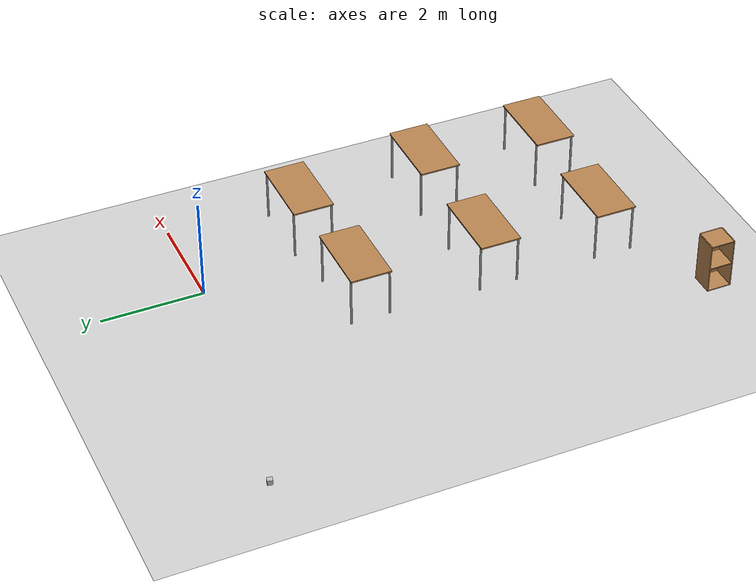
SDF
<sdf version="1.6">
 <world name="default">
  <light name="sun" type="directional">
   <pose>0 0 10 0 -0 0</pose>
   <diffuse>0.8 0.8 0.8 1</diffuse>
   <specular>0.2 0.2 0.2 1</specular>
   <attenuation>
    <range>1000</range>
    <constant>0.9</constant>
    <linear>0.01</linear>
    <quadratic>0.001</quadratic>
   </attenuation>
   <direction>-0.5 0.1 -0.9</direction>
  </light>
  <model name="ground_plane">
   <static>1</static>
   <link name="link">
    <collision name="collision">
     <geometry><plane><normal>0 0 1</normal><size>100 100</size></plane></geometry>
     <surface>
      <contact><collide_bitmask>65535</collide_bitmask></contact>
      <friction><ode><mu>100</mu><mu2>50</mu2></ode></friction>
     </surface>
    </collision>
    <visual name="visual">
     <cast_shadows>0</cast_shadows>
     <geometry><plane><normal>0 0 1</normal><size>100 100</size></plane></geometry>
     <material>
      <script><uri>file://media/materials/scripts/gazebo.material</uri><name>Gazebo/Grey</name></script>
     </material>
    </visual>
   </link>
  </model>
  <gravity>0 0 -9.8</gravity>
  <magnetic_field>6e-06 2.3e-05 -4.2e-05</magnetic_field>
  <atmosphere type="adiabatic"/>
  <physics name="default_physics" default="0" type="ode">
   <max_step_size>0.001</max_step_size>
   <real_time_factor>1</real_time_factor>
   <real_time_update_rate>1000</real_time_update_rate>
  </physics>
  <scene><ambient>0.4 0.4 0.4 1</ambient><background>0.7 0.7 0.7 1</background><shadows>1</shadows></scene>
  <spherical_coordinates>
   <surface_model>EARTH_WGS84</surface_model>
   <latitude_deg>0</latitude_deg>
   <longitude_deg>0</longitude_deg>
   <elevation>0</elevation>
   <heading_deg>0</heading_deg>
  </spherical_coordinates>
  <model name="table">
   <static>1</static>
   <link name="link">
    <collision name="surface">
     <pose>0 0 1 0 -0 0</pose>
     <geometry><box><size>1.5 0.8 0.03</size></box></geometry>
     <surface><friction><ode><mu>0.6</mu><mu2>0.6</mu2></ode></friction></surface>
    </collision>
    <visual name="visual1">
     <pose>0 0 1 0 -0 0</pose>
     <geometry><box><size>1.5 0.8 0.03</size></box></geometry>
     <material>
      <script><uri>file://media/materials/scripts/gazebo.material</uri><name>Gazebo/Wood</name></script>
     </material>
    </visual>
    <collision name="front_left_leg">
     <pose>0.68 0.38 0.5 0 -0 0</pose>
     <geometry><cylinder><radius>0.02</radius><length>1</length></cylinder></geometry>
    </collision>
    <visual name="front_left_leg">
     <pose>0.68 0.38 0.5 0 -0 0</pose>
     <geometry><cylinder><radius>0.02</radius><length>1</length></cylinder></geometry>
     <material>
      <script><uri>file://media/materials/scripts/gazebo.material</uri><name>Gazebo/Grey</name></script>
     </material>
    </visual>
    <collision name="front_right_leg">
     <pose>0.68 -0.38 0.5 0 -0 0</pose>
     <geometry><cylinder><radius>0.02</radius><length>1</length></cylinder></geometry>
    </collision>
    <visual name="front_right_leg">
     <pose>0.68 -0.38 0.5 0 -0 0</pose>
     <geometry><cylinder><radius>0.02</radius><length>1</length></cylinder></geometry>
     <material>
      <script><uri>file://media/materials/scripts/gazebo.material</uri><name>Gazebo/Grey</name></script>
     </material>
    </visual>
    <collision name="back_right_leg">
     <pose>-0.68 -0.38 0.5 0 -0 0</pose>
     <geometry><cylinder><radius>0.02</radius><length>1</length></cylinder></geometry>
    </collision>
    <visual name="back_right_leg">
     <pose>-0.68 -0.38 0.5 0 -0 0</pose>
     <geometry><cylinder><radius>0.02</radius><length>1</length></cylinder></geometry>
     <material>
      <script><uri>file://media/materials/scripts/gazebo.material</uri><name>Gazebo/Grey</name></script>
     </material>
    </visual>
    <collision name="back_left_leg">
     <pose>-0.68 0.38 0.5 0 -0 0</pose>
     <geometry><cylinder><radius>0.02</radius><length>1</length></cylinder></geometry>
    </collision>
    <visual name="back_left_leg">
     <pose>-0.68 0.38 0.5 0 -0 0</pose>
     <geometry><cylinder><radius>0.02</radius><length>1</length></cylinder></geometry>
     <material>
      <script><uri>file://media/materials/scripts/gazebo.material</uri><name>Gazebo/Grey</name></script>
     </material>
    </visual>
   </link>
   <pose>-1.23997 -2.51729 0 0 -0 0</pose>
  </model>
  <model name="table_0">
   <static>1</static>
   <link name="link">
    <collision name="surface">
     <pose>0 0 1 0 -0 0</pose>
     <geometry><box><size>1.5 0.8 0.03</size></box></geometry>
     <surface><friction><ode><mu>0.6</mu><mu2>0.6</mu2></ode></friction></surface>
    </collision>
    <visual name="visual1">
     <pose>0 0 1 0 -0 0</pose>
     <geometry><box><size>1.5 0.8 0.03</size></box></geometry>
     <material>
      <script><uri>file://media/materials/scripts/gazebo.material</uri><name>Gazebo/Wood</name></script>
     </material>
    </visual>
    <collision name="front_left_leg">
     <pose>0.68 0.38 0.5 0 -0 0</pose>
     <geometry><cylinder><radius>0.02</radius><length>1</length></cylinder></geometry>
    </collision>
    <visual name="front_left_leg">
     <pose>0.68 0.38 0.5 0 -0 0</pose>
     <geometry><cylinder><radius>0.02</radius><length>1</length></cylinder></geometry>
     <material>
      <script><uri>file://media/materials/scripts/gazebo.material</uri><name>Gazebo/Grey</name></script>
     </material>
    </visual>
    <collision name="front_right_leg">
     <pose>0.68 -0.38 0.5 0 -0 0</pose>
     <geometry><cylinder><radius>0.02</radius><length>1</length></cylinder></geometry>
    </collision>
    <visual name="front_right_leg">
     <pose>0.68 -0.38 0.5 0 -0 0</pose>
     <geometry><cylinder><radius>0.02</radius><length>1</length></cylinder></geometry>
     <material>
      <script><uri>file://media/materials/scripts/gazebo.material</uri><name>Gazebo/Grey</name></script>
     </material>
    </visual>
    <collision name="back_right_leg">
     <pose>-0.68 -0.38 0.5 0 -0 0</pose>
     <geometry><cylinder><radius>0.02</radius><length>1</length></cylinder></geometry>
    </collision>
    <visual name="back_right_leg">
     <pose>-0.68 -0.38 0.5 0 -0 0</pose>
     <geometry><cylinder><radius>0.02</radius><length>1</length></cylinder></geometry>
     <material>
      <script><uri>file://media/materials/scripts/gazebo.material</uri><name>Gazebo/Grey</name></script>
     </material>
    </visual>
    <collision name="back_left_leg">
     <pose>-0.68 0.38 0.5 0 -0 0</pose>
     <geometry><cylinder><radius>0.02</radius><length>1</length></cylinder></geometry>
    </collision>
    <visual name="back_left_leg">
     <pose>-0.68 0.38 0.5 0 -0 0</pose>
     <geometry><cylinder><radius>0.02</radius><length>1</length></cylinder></geometry>
     <material>
      <script><uri>file://media/materials/scripts/gazebo.material</uri><name>Gazebo/Grey</name></script>
     </material>
    </visual>
   </link>
   <pose>1.05084 -2.34042 0 0 -0 0</pose>
  </model>
  <model name="table_1">
   <static>1</static>
   <link name="link">
    <collision name="surface">
     <pose>0 0 1 0 -0 0</pose>
     <geometry><box><size>1.5 0.8 0.03</size></box></geometry>
     <surface><friction><ode><mu>0.6</mu><mu2>0.6</mu2></ode></friction></surface>
    </collision>
    <visual name="visual1">
     <pose>0 0 1 0 -0 0</pose>
     <geometry><box><size>1.5 0.8 0.03</size></box></geometry>
     <material>
      <script><uri>file://media/materials/scripts/gazebo.material</uri><name>Gazebo/Wood</name></script>
     </material>
    </visual>
    <collision name="front_left_leg">
     <pose>0.68 0.38 0.5 0 -0 0</pose>
     <geometry><cylinder><radius>0.02</radius><length>1</length></cylinder></geometry>
    </collision>
    <visual name="front_left_leg">
     <pose>0.68 0.38 0.5 0 -0 0</pose>
     <geometry><cylinder><radius>0.02</radius><length>1</length></cylinder></geometry>
     <material>
      <script><uri>file://media/materials/scripts/gazebo.material</uri><name>Gazebo/Grey</name></script>
     </material>
    </visual>
    <collision name="front_right_leg">
     <pose>0.68 -0.38 0.5 0 -0 0</pose>
     <geometry><cylinder><radius>0.02</radius><length>1</length></cylinder></geometry>
    </collision>
    <visual name="front_right_leg">
     <pose>0.68 -0.38 0.5 0 -0 0</pose>
     <geometry><cylinder><radius>0.02</radius><length>1</length></cylinder></geometry>
     <material>
      <script><uri>file://media/materials/scripts/gazebo.material</uri><name>Gazebo/Grey</name></script>
     </material>
    </visual>
    <collision name="back_right_leg">
     <pose>-0.68 -0.38 0.5 0 -0 0</pose>
     <geometry><cylinder><radius>0.02</radius><length>1</length></cylinder></geometry>
    </collision>
    <visual name="back_right_leg">
     <pose>-0.68 -0.38 0.5 0 -0 0</pose>
     <geometry><cylinder><radius>0.02</radius><length>1</length></cylinder></geometry>
     <material>
      <script><uri>file://media/materials/scripts/gazebo.material</uri><name>Gazebo/Grey</name></script>
     </material>
    </visual>
    <collision name="back_left_leg">
     <pose>-0.68 0.38 0.5 0 -0 0</pose>
     <geometry><cylinder><radius>0.02</radius><length>1</length></cylinder></geometry>
    </collision>
    <visual name="back_left_leg">
     <pose>-0.68 0.38 0.5 0 -0 0</pose>
     <geometry><cylinder><radius>0.02</radius><length>1</length></cylinder></geometry>
     <material>
      <script><uri>file://media/materials/scripts/gazebo.material</uri><name>Gazebo/Grey</name></script>
     </material>
    </visual>
   </link>
   <pose>-1.31217 -5.06597 0 0 -0 0</pose>
  </model>
  <model name="table_2">
   <static>1</static>
   <link name="link">
    <collision name="surface">
     <pose>0 0 1 0 -0 0</pose>
     <geometry><box><size>1.5 0.8 0.03</size></box></geometry>
     <surface><friction><ode><mu>0.6</mu><mu2>0.6</mu2></ode></friction></surface>
    </collision>
    <visual name="visual1">
     <pose>0 0 1 0 -0 0</pose>
     <geometry><box><size>1.5 0.8 0.03</size></box></geometry>
     <material>
      <script><uri>file://media/materials/scripts/gazebo.material</uri><name>Gazebo/Wood</name></script>
     </material>
    </visual>
    <collision name="front_left_leg">
     <pose>0.68 0.38 0.5 0 -0 0</pose>
     <geometry><cylinder><radius>0.02</radius><length>1</length></cylinder></geometry>
    </collision>
    <visual name="front_left_leg">
     <pose>0.68 0.38 0.5 0 -0 0</pose>
     <geometry><cylinder><radius>0.02</radius><length>1</length></cylinder></geometry>
     <material>
      <script><uri>file://media/materials/scripts/gazebo.material</uri><name>Gazebo/Grey</name></script>
     </material>
    </visual>
    <collision name="front_right_leg">
     <pose>0.68 -0.38 0.5 0 -0 0</pose>
     <geometry><cylinder><radius>0.02</radius><length>1</length></cylinder></geometry>
    </collision>
    <visual name="front_right_leg">
     <pose>0.68 -0.38 0.5 0 -0 0</pose>
     <geometry><cylinder><radius>0.02</radius><length>1</length></cylinder></geometry>
     <material>
      <script><uri>file://media/materials/scripts/gazebo.material</uri><name>Gazebo/Grey</name></script>
     </material>
    </visual>
    <collision name="back_right_leg">
     <pose>-0.68 -0.38 0.5 0 -0 0</pose>
     <geometry><cylinder><radius>0.02</radius><length>1</length></cylinder></geometry>
    </collision>
    <visual name="back_right_leg">
     <pose>-0.68 -0.38 0.5 0 -0 0</pose>
     <geometry><cylinder><radius>0.02</radius><length>1</length></cylinder></geometry>
     <material>
      <script><uri>file://media/materials/scripts/gazebo.material</uri><name>Gazebo/Grey</name></script>
     </material>
    </visual>
    <collision name="back_left_leg">
     <pose>-0.68 0.38 0.5 0 -0 0</pose>
     <geometry><cylinder><radius>0.02</radius><length>1</length></cylinder></geometry>
    </collision>
    <visual name="back_left_leg">
     <pose>-0.68 0.38 0.5 0 -0 0</pose>
     <geometry><cylinder><radius>0.02</radius><length>1</length></cylinder></geometry>
     <material>
      <script><uri>file://media/materials/scripts/gazebo.material</uri><name>Gazebo/Grey</name></script>
     </material>
    </visual>
   </link>
   <pose>1.23467 -5.02516 0 0 -0 0</pose>
  </model>
  <model name="table_3">
   <static>1</static>
   <link name="link">
    <collision name="surface">
     <pose>0 0 1 0 -0 0</pose>
     <geometry><box><size>1.5 0.8 0.03</size></box></geometry>
     <surface><friction><ode><mu>0.6</mu><mu2>0.6</mu2></ode></friction></surface>
    </collision>
    <visual name="visual1">
     <pose>0 0 1 0 -0 0</pose>
     <geometry><box><size>1.5 0.8 0.03</size></box></geometry>
     <material>
      <script><uri>file://media/materials/scripts/gazebo.material</uri><name>Gazebo/Wood</name></script>
     </material>
    </visual>
    <collision name="front_left_leg">
     <pose>0.68 0.38 0.5 0 -0 0</pose>
     <geometry><cylinder><radius>0.02</radius><length>1</length></cylinder></geometry>
    </collision>
    <visual name="front_left_leg">
     <pose>0.68 0.38 0.5 0 -0 0</pose>
     <geometry><cylinder><radius>0.02</radius><length>1</length></cylinder></geometry>
     <material>
      <script><uri>file://media/materials/scripts/gazebo.material</uri><name>Gazebo/Grey</name></script>
     </material>
    </visual>
    <collision name="front_right_leg">
     <pose>0.68 -0.38 0.5 0 -0 0</pose>
     <geometry><cylinder><radius>0.02</radius><length>1</length></cylinder></geometry>
    </collision>
    <visual name="front_right_leg">
     <pose>0.68 -0.38 0.5 0 -0 0</pose>
     <geometry><cylinder><radius>0.02</radius><length>1</length></cylinder></geometry>
     <material>
      <script><uri>file://media/materials/scripts/gazebo.material</uri><name>Gazebo/Grey</name></script>
     </material>
    </visual>
    <collision name="back_right_leg">
     <pose>-0.68 -0.38 0.5 0 -0 0</pose>
     <geometry><cylinder><radius>0.02</radius><length>1</length></cylinder></geometry>
    </collision>
    <visual name="back_right_leg">
     <pose>-0.68 -0.38 0.5 0 -0 0</pose>
     <geometry><cylinder><radius>0.02</radius><length>1</length></cylinder></geometry>
     <material>
      <script><uri>file://media/materials/scripts/gazebo.material</uri><name>Gazebo/Grey</name></script>
     </material>
    </visual>
    <collision name="back_left_leg">
     <pose>-0.68 0.38 0.5 0 -0 0</pose>
     <geometry><cylinder><radius>0.02</radius><length>1</length></cylinder></geometry>
    </collision>
    <visual name="back_left_leg">
     <pose>-0.68 0.38 0.5 0 -0 0</pose>
     <geometry><cylinder><radius>0.02</radius><length>1</length></cylinder></geometry>
     <material>
      <script><uri>file://media/materials/scripts/gazebo.material</uri><name>Gazebo/Grey</name></script>
     </material>
    </visual>
   </link>
   <pose>-1.32909 -7.44545 0 0 -0 0</pose>
  </model>
  <model name="table_4">
   <static>1</static>
   <link name="link">
    <collision name="surface">
     <pose>0 0 1 0 -0 0</pose>
     <geometry><box><size>1.5 0.8 0.03</size></box></geometry>
     <surface><friction><ode><mu>0.6</mu><mu2>0.6</mu2></ode></friction></surface>
    </collision>
    <visual name="visual1">
     <pose>0 0 1 0 -0 0</pose>
     <geometry><box><size>1.5 0.8 0.03</size></box></geometry>
     <material>
      <script><uri>file://media/materials/scripts/gazebo.material</uri><name>Gazebo/Wood</name></script>
     </material>
    </visual>
    <collision name="front_left_leg">
     <pose>0.68 0.38 0.5 0 -0 0</pose>
     <geometry><cylinder><radius>0.02</radius><length>1</length></cylinder></geometry>
    </collision>
    <visual name="front_left_leg">
     <pose>0.68 0.38 0.5 0 -0 0</pose>
     <geometry><cylinder><radius>0.02</radius><length>1</length></cylinder></geometry>
     <material>
      <script><uri>file://media/materials/scripts/gazebo.material</uri><name>Gazebo/Grey</name></script>
     </material>
    </visual>
    <collision name="front_right_leg">
     <pose>0.68 -0.38 0.5 0 -0 0</pose>
     <geometry><cylinder><radius>0.02</radius><length>1</length></cylinder></geometry>
    </collision>
    <visual name="front_right_leg">
     <pose>0.68 -0.38 0.5 0 -0 0</pose>
     <geometry><cylinder><radius>0.02</radius><length>1</length></cylinder></geometry>
     <material>
      <script><uri>file://media/materials/scripts/gazebo.material</uri><name>Gazebo/Grey</name></script>
     </material>
    </visual>
    <collision name="back_right_leg">
     <pose>-0.68 -0.38 0.5 0 -0 0</pose>
     <geometry><cylinder><radius>0.02</radius><length>1</length></cylinder></geometry>
    </collision>
    <visual name="back_right_leg">
     <pose>-0.68 -0.38 0.5 0 -0 0</pose>
     <geometry><cylinder><radius>0.02</radius><length>1</length></cylinder></geometry>
     <material>
      <script><uri>file://media/materials/scripts/gazebo.material</uri><name>Gazebo/Grey</name></script>
     </material>
    </visual>
    <collision name="back_left_leg">
     <pose>-0.68 0.38 0.5 0 -0 0</pose>
     <geometry><cylinder><radius>0.02</radius><length>1</length></cylinder></geometry>
    </collision>
    <visual name="back_left_leg">
     <pose>-0.68 0.38 0.5 0 -0 0</pose>
     <geometry><cylinder><radius>0.02</radius><length>1</length></cylinder></geometry>
     <material>
      <script><uri>file://media/materials/scripts/gazebo.material</uri><name>Gazebo/Grey</name></script>
     </material>
    </visual>
   </link>
   <pose>1.19986 -7.46561 0 0 -0 0</pose>
  </model>
  <model name="cabinet">
   <static>1</static>
   <link name="cabinet_bottom_plate">
    <inertial>
     <pose>0 0 -1 0 -0 0</pose>
     <inertia><ixx>2.05</ixx><ixy>0</ixy><ixz>0</ixz><iyy>2.05</iyy><iyz>0</iyz><izz>2.05</izz></inertia>
     <mass>25</mass>
    </inertial>
    <collision name="cabinet_bottom_plate_geom">
     <pose>0 0 0.01 0 -0 0</pose>
     <geometry><box><size>0.45 0.45 0.02</size></box></geometry>
    </collision>
    <visual name="cabinet_bottom_plate_geom_visual">
     <pose>0 0 0.01 0 -0 0</pose>
     <geometry><box><size>0.45 0.45 0.02</size></box></geometry>
     <material>
      <script><uri>file://media/materials/scripts/gazebo.material</uri><name>Gazebo/Wood</name></script>
     </material>
    </visual>
    <collision name="cabinet_bottom_plate_geom_cabinet_back_plate">
     <pose>0.235 0 0.51 0 -0 0</pose>
     <geometry><box><size>0.02 0.45 1.02</size></box></geometry>
    </collision>
    <visual name="cabinet_bottom_plate_geom_cabinet_back_plate_visual">
     <pose>0.235 0 0.51 0 -0 0</pose>
     <geometry><box><size>0.02 0.45 1.02</size></box></geometry>
     <material>
      <script><uri>file://media/materials/scripts/gazebo.material</uri><name>Gazebo/Wood</name></script>
     </material>
    </visual>
    <collision name="cabinet_bottom_plate_geom_cabinet_left_plate">
     <pose>0 0.235 0.51 0 -0 0</pose>
     <geometry><box><size>0.45 0.02 1.02</size></box></geometry>
    </collision>
    <visual name="cabinet_bottom_plate_geom_cabinet_left_plate_visual">
     <pose>0 0.235 0.51 0 -0 0</pose>
     <geometry><box><size>0.45 0.02 1.02</size></box></geometry>
     <material>
      <script><uri>file://media/materials/scripts/gazebo.material</uri><name>Gazebo/Wood</name></script>
     </material>
    </visual>
    <collision name="cabinet_bottom_plate_geom_cabinet_middle_plate">
     <pose>0 0 0.51 0 -0 0</pose>
     <geometry><box><size>0.45 0.45 0.02</size></box></geometry>
    </collision>
    <visual name="cabinet_bottom_plate_geom_cabinet_middle_plate_visual">
     <pose>0 0 0.51 0 -0 0</pose>
     <geometry><box><size>0.45 0.45 0.02</size></box></geometry>
     <material>
      <script><uri>file://media/materials/scripts/gazebo.material</uri><name>Gazebo/Wood</name></script>
     </material>
    </visual>
    <collision name="cabinet_bottom_plate_geom_cabinet_right_plate">
     <pose>0 -0.235 0.51 0 -0 0</pose>
     <geometry><box><size>0.45 0.02 1.02</size></box></geometry>
    </collision>
    <visual name="cabinet_bottom_plate_geom_cabinet_right_plate_visual">
     <pose>0 -0.235 0.51 0 -0 0</pose>
     <geometry><box><size>0.45 0.02 1.02</size></box></geometry>
     <material>
      <script><uri>file://media/materials/scripts/gazebo.material</uri><name>Gazebo/Wood</name></script>
     </material>
    </visual>
    <collision name="cabinet_bottom_plate_geom_cabinet_top_plate">
     <pose>0 0 1.01 0 -0 0</pose>
     <geometry><box><size>0.45 0.45 0.02</size></box></geometry>
    </collision>
    <visual name="cabinet_bottom_plate_geom_cabinet_top_plate_visual">
     <pose>0 0 1.01 0 -0 0</pose>
     <geometry><box><size>0.45 0.45 0.02</size></box></geometry>
     <material>
      <script><uri>file://media/materials/scripts/gazebo.material</uri><name>Gazebo/Wood</name></script>
     </material>
    </visual>
   </link>
   <pose>-3.53754 -8.74079 0 0 -0 0</pose>
  </model>
  <model name="camera">
   <pose>-5.2225 0.756747 0.05 1.5708 -0 -0.210891</pose>
   <link name="link">
    <inertial>
     <mass>0.1</mass>
     <inertia>
      <ixx>0.000166667</ixx>
      <iyy>0.000166667</iyy>
      <izz>0.000166667</izz>
      <ixy>0</ixy>
      <ixz>0</ixz>
      <iyz>0</iyz>
     </inertia>
    </inertial>
    <collision name="collision"><geometry><box><size>0.1 0.1 0.1</size></box></geometry></collision>
    <visual name="visual"><geometry><box><size>0.1 0.1 0.1</size></box></geometry></visual>
    <sensor name="camera" type="camera">
     <camera name="__default__">
      <horizontal_fov>1.047</horizontal_fov>
      <image><width>320</width><height>240</height></image>
      <clip><near>0.1</near><far>100</far></clip>
     </camera>
     <always_on>1</always_on>
     <update_rate>30</update_rate>
     <visualize>1</visualize>
    </sensor>
   </link>
  </model>
 </world>
</sdf>
